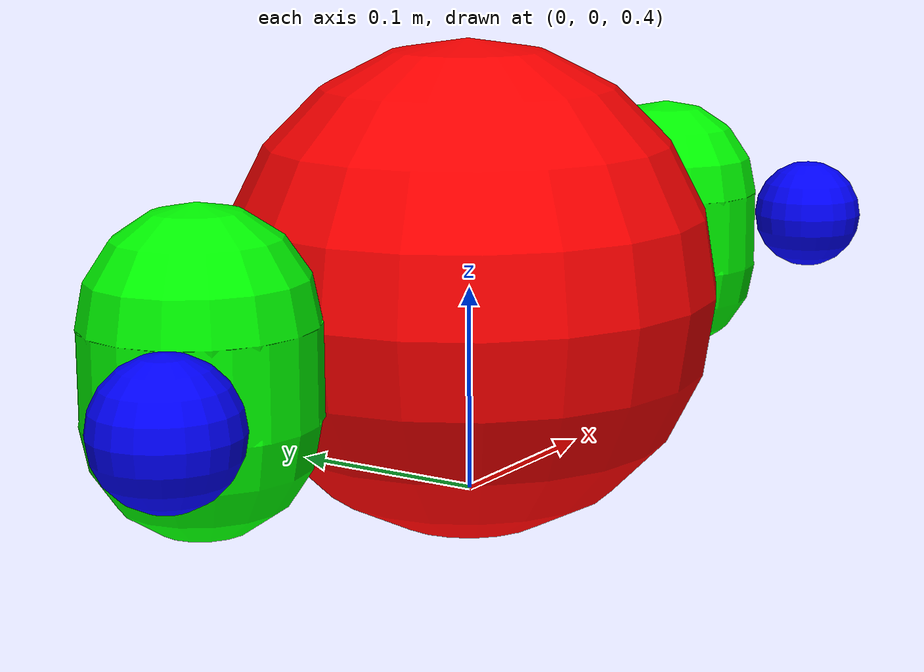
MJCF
<mujoco model="geodude">
    <worldbody>
	<light diffuse=".5 .5 .5" pos="0 0 3" dir="0 0 -1" />
	<geom name="ground" type="plane" size="100 100 0.1" rgba=".9 .9 .9 1" />
        <body name="geodude_body" pos = "0 0 0.5" >
		<joint type = "free"/>
		<body name="main_body" pos = "0 0 0">
            	<geom type="sphere" size="0.12" rgba="1 0 0 1" pos="0 0 0" mass = "5"/>
		</body>
            	<body name="arm1" pos="-0.2 0 0">
                	<geom type="capsule" size="0.05 0.02" rgba="0 1 0 1" mass = "0.01"/>
                	<joint name = "arm1" axis="1 0 0" type="hinge" range="-60 60" />
                	<body name="hand1" pos="-0.08 -0.05 0">
                    	<geom type="sphere" size="0.03" rgba="0 0 1 1" mass = "1"/>
                	</body>
            	</body>
            	<body name="arm2" pos="0.2 0 0">
                	<geom type="capsule" size="0.05 0.02" rgba="0 1 0 1" mass = "0.01"/>
                	<joint name = "arm2" axis="1 0 0" type="hinge" range="-60 60"/>
                	<body name="hand2" pos="0.08 -0.05 0">
                    	<geom type="sphere" size="0.03" rgba="0 0 1 1" mass = "1"/>
                	</body>
            	</body>
        </body>
    </worldbody>

    <actuator>
	<motor joint = "arm1" name = "arm1" gear = "0.2" ctrllimited="true" ctrlrange = "-60 60"/>
	<motor joint = "arm2" name = "arm2" gear = "0.2" ctrllimited="true" ctrlrange = "-60 60"/>
    </actuator>
</mujoco>
